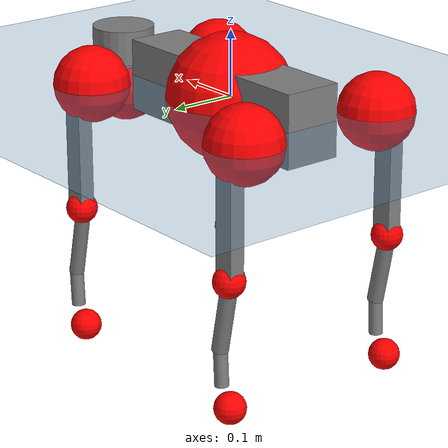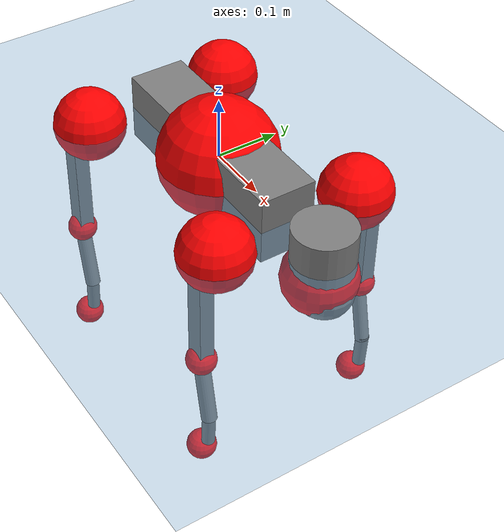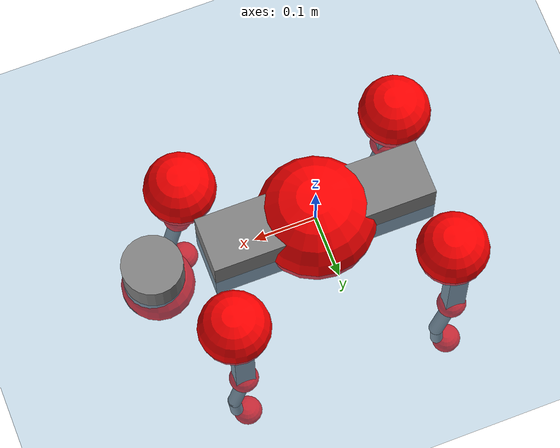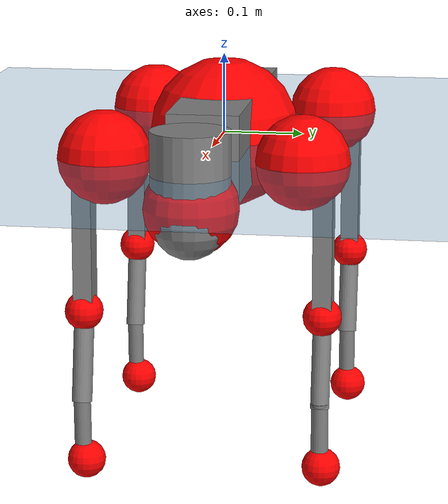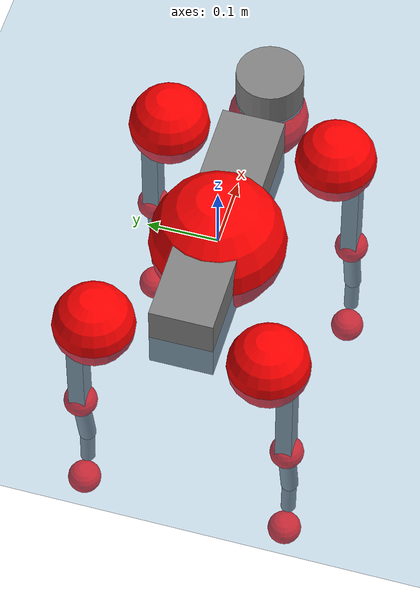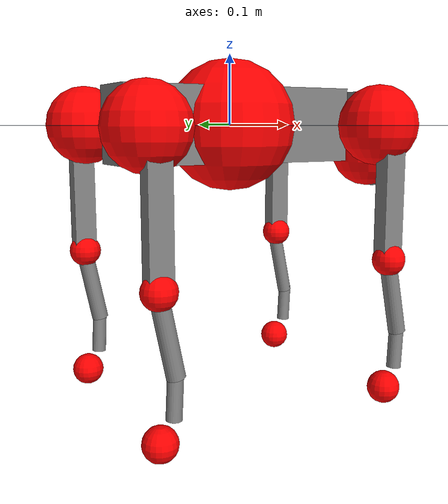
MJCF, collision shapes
<mujoco model="go2">
  <compiler angle="radian" assetdir="assets" balanceinertia="true" inertiafromgeom="false"/>

  <option timestep="0.005" density="1.2" viscosity="2e-05"/>

  <size nkey="1"/>

  <visual>
    <quality shadowsize="8192"/>
    <map shadowclip="0.5"/>
  </visual>

  <default>
    <default class="/">
      <geom contype="0" conaffinity="0" group="1" solref="-1000 -80"/>
      <site size="0.01 0.005 0.005" group="5"/>
      <general forcelimited="true" biastype="affine" gainprm="20" biasprm="0 -20 -0.5"/>
      <default class="go2">
        <joint armature="0.01" damping="0.01" frictionloss="0.2"/>
        <geom condim="1" margin="0.001"/>
        <default class="visual">
          <geom type="mesh" group="2"/>
        </default>
        <default class="collision">
          <geom group="3"/>
          <default class="foot">
            <geom size="0.022 0 0" condim="6" priority="1" friction="0.8 0.02 0.01" solimp="0.015 1 0.022"/>
          </default>
        </default>
        <default class="reward_collision_sphere">
          <geom group="5" rgba="1 0 0 1"/>
        </default>
      </default>
    </default>
  </default>

  <asset>
    <texture type="skybox" colorspace="auto" name="//unnamed_texture_0" builtin="gradient" rgb1="0.95 0.95 0.95" rgb2="0.95 0.95 0.95" width="100" height="600"/>
    <texture type="2d" colorspace="auto" name="texplane" builtin="checker" rgb1="0.345 0.575 0.748" rgb2="0.345 0.575 0.748" markrgb="1 1 1" width="512" height="512"/>
    <material name="MatPlane" class="/" texture="texplane" texuniform="true" texrepeat="2 2" specular="0.9"/>
    <material name="metal" class="/" rgba="0.9 0.95 0.95 1"/>
    <material name="black" class="/" rgba="0 0 0 1"/>
    <material name="white" class="/"/>
    <material name="gray" class="/" rgba="0.671705 0.692426 0.77427 1"/>
    <mesh name="base_0" class="/" file="base_0.obj"/>
    <mesh name="base_1" class="/" file="base_1.obj"/>
    <mesh name="base_2" class="/" file="base_2.obj"/>
    <mesh name="base_3" class="/" file="base_3.obj"/>
    <mesh name="base_4" class="/" file="base_4.obj"/>
    <mesh name="hip_0" class="/" file="hip_0.obj"/>
    <mesh name="hip_1" class="/" file="hip_1.obj"/>
    <mesh name="thigh_0" class="/" file="thigh_0.obj"/>
    <mesh name="thigh_1" class="/" file="thigh_1.obj"/>
    <mesh name="thigh_mirror_0" class="/" file="thigh_mirror_0.obj"/>
    <mesh name="thigh_mirror_1" class="/" file="thigh_mirror_1.obj"/>
    <mesh name="calf_0" class="/" file="calf_0.obj"/>
    <mesh name="calf_1" class="/" file="calf_1.obj"/>
    <mesh name="calf_mirror_0" class="/" file="calf_mirror_0.obj"/>
    <mesh name="calf_mirror_1" class="/" file="calf_mirror_1.obj"/>
    <mesh name="foot" class="/" file="foot.obj"/>
  </asset>

  <worldbody>
    <geom name="floor" class="/" size="100 100 0.125" type="plane" group="0" material="MatPlane"/>
    <light name="toplight_shadow" class="/" pos="0 0 5" dir="0.0990148 0.0990148 -0.990148" type="directional" ambient="0.04 0.04 0.04" diffuse="0.55 0.55 0.55" specular="0.12 0.12 0.12"/>
    <light name="toplight_fill" class="/" pos="0 0 5" dir="0.0990148 0.0990148 -0.990148" type="directional" castshadow="false" ambient="0.04 0.04 0.04" diffuse="0.3 0.3 0.3" specular="0.08 0.08 0.08"/>
    <body name="trunk" childclass="go2" pos="2.0586e-05 6.96082e-05 -0.000167122" quat="1 5.22098e-05 1.62891e-05 -0.000102908">
      <inertial pos="0.0196154 0.0016034 -0.00417055" quat="-0.000597632 0.713613 -0.00185343 0.700537" mass="5.99948" diaginertia="0.072433 0.115356 0.0146194"/>
      <joint name="//unnamed_joint_0" type="free" armature="0" damping="0" frictionloss="0"/>
      <geom name="//unnamed_geom_1" class="visual" material="black" mesh="base_0"/>
      <geom name="//unnamed_geom_2" class="visual" material="black" mesh="base_1"/>
      <geom name="//unnamed_geom_3" class="visual" material="black" mesh="base_2"/>
      <geom name="//unnamed_geom_4" class="visual" material="white" mesh="base_3"/>
      <geom name="//unnamed_geom_5" class="visual" material="gray" mesh="base_4"/>
      <geom name="trunk_1" class="collision" size="0.178682 0.0444093 0.0541461" type="box"/>
      <geom name="trunk_2" class="collision" size="0.0474966 0.0427469" pos="0.262207 0 0.00900088" type="cylinder"/>
      <geom name="trunk_3" class="collision" size="0.0446468" pos="0.269567 0 -0.0540053"/>
      <geom name="//unnamed_geom_9" class="reward_collision_sphere" size="0.0949932"/>
      <geom name="//unnamed_geom_10" class="reward_collision_sphere" size="0.0569959" pos="0.257607 0 -0.040504"/>
      <site name="imu" pos="-0.02814 0.00352052 0.0331581" size="0.00949932"/>
      <camera name="track" pos="0 -2.05937 0" quat="0.707107 0.707107 0 0" mode="trackcom"/>
      <camera name="ego_camera" pos="0.287047 0 0.040504" quat="-0.5 -0.5 0.5 0.5"/>
      <body name="FL_hip" pos="0.176785 0.0485932 0.000401932" quat="1 3.9283e-05 -0.000133634 4.36428e-05">
        <inertial pos="-0.00602579 0.00223083 0.00060216" quat="0.496664 0.497749 0.50701 0.49851" mass="0.589833" diaginertia="0.000587069 0.000702561 0.000283811"/>
        <joint name="FL_hip_joint" pos="0 0 0" axis="0.999993 0.00103762 0.00368326" stiffness="0.00157507" range="-1.02864 1.04739" armature="0.00929074" damping="0.00224336" frictionloss="0.180697"/>
        <geom name="//unnamed_geom_11" class="visual" material="metal" mesh="hip_0"/>
        <geom name="//unnamed_geom_12" class="visual" material="gray" mesh="hip_1"/>
        <geom name="//unnamed_geom_13" class="collision" size="0.0436969 0.0189986" pos="0 0.0823747 0" quat="0.707107 0.707107 0 0" type="cylinder"/>
        <geom name="//unnamed_geom_14" class="reward_collision_sphere" size="0.0569959" pos="0 0.0720779 0"/>
        <body name="FL_thigh" pos="-0.000774322 0.097642 0.00176816" quat="1 -4.6117e-05 7.07124e-05 0.000117664">
          <inertial pos="-0.00335025 -0.02295 -0.028567" quat="0.829647 0.0845602 -0.0198409 0.55149" mass="0.965405" diaginertia="0.00393681 0.0066967 0.000497115"/>
          <joint name="FL_thigh_joint" pos="0 0 0" axis="-0.000629405 1 0.000154446" stiffness="0.00697169" range="-1.56259 3.472" armature="0.00940994" damping="0.00338339" frictionloss="0.194847"/>
          <geom name="//unnamed_geom_15" class="visual" material="metal" mesh="thigh_0"/>
          <geom name="//unnamed_geom_16" class="visual" material="gray" mesh="thigh_1"/>
          <geom name="//unnamed_geom_17" class="collision" size="0.101168 0.0116367 0.0161488" pos="0 0 -0.0958593" quat="0.707107 0 0.707107 0" type="box"/>
          <body name="FL_calf" pos="-0.000371911 -0.000725611 -0.191107" quat="1 0.000699038 0.000507863 -1.64258e-05">
            <inertial pos="0.0054849 -0.000556367 -0.126822" quat="0.710781 0.00161341 -0.00468099 0.703396" mass="0.208375" diaginertia="0.000983819 0.00166576 3.13627e-05"/>
            <joint name="FL_calf_joint" pos="0 0 0" axis="0.00642867 0.999979 0.000481767" stiffness="0.00129663" range="-2.71334 -0.842349" armature="0.00988157" damping="0.00395618" frictionloss="0.188381"/>
            <geom name="//unnamed_geom_18" class="visual" material="gray" mesh="calf_0"/>
            <geom name="//unnamed_geom_19" class="visual" material="black" mesh="calf_1"/>
            <geom name="FL_calf0" class="collision" size="0.0113992 0.0569959" pos="0.00736019 0 -0.0540053" quat="0.994493 0 -0.104807 0" type="cylinder"/>
            <geom name="//unnamed_geom_21" class="collision" size="0.0104493 0.0308728" pos="0.0184005 0 -0.133213" quat="0.999688 0 0.0249974 0" type="cylinder"/>
            <geom name="//unnamed_geom_22" class="visual" pos="0 0 -0.191719" quat="1 0 0 0" material="black" mesh="foot"/>
            <geom name="FL_foot" class="foot" size="0.0182854" pos="-0.00184005 0 -0.191719"/>
            <geom name="//unnamed_geom_24" class="reward_collision_sphere" size="0.0237483"/>
            <geom name="//unnamed_geom_25" class="reward_collision_sphere" size="0.0237483" pos="-0.00184005 0 -0.191719"/>
            <site name="FL_foot" class="foot" pos="-0.00184005 0 -0.191719" size="0.00949932"/>
          </body>
        </body>
      </body>
      <body name="FR_hip" pos="0.177295 -0.0466359 7.61439e-06" quat="1 -0.000140692 0.000259965 -1.98169e-05">
        <inertial pos="-0.0046771 -0.00157075 -0.000438138" quat="0.49847 0.505069 0.499417 0.497006" mass="0.565346" diaginertia="0.000569938 0.000684976 0.000283634"/>
        <joint name="FR_hip_joint" pos="0 0 0" axis="0.999996 -0.000675353 -0.00277604" range="-1.03661 1.01573" armature="0.00962523" damping="0.0101861" frictionloss="0.192726"/>
        <geom name="//unnamed_geom_26" class="visual" pos="0 1.12899e-09 4.84247e-08" quat="4.63268e-05 1 0 0" material="metal" mesh="hip_0"/>
        <geom name="//unnamed_geom_27" class="visual" pos="0 1.83023e-09 -1.19773e-07" quat="4.63268e-05 1 0 0" material="gray" mesh="hip_1"/>
        <geom name="//unnamed_geom_28" class="collision" size="0.0436969 0.0189986" pos="0 -0.0823747 0" quat="0.707107 0.707107 0 0" type="cylinder"/>
        <geom name="//unnamed_geom_29" class="reward_collision_sphere" size="0.0569959" pos="0 -0.0720779 0"/>
        <body name="FR_thigh" pos="0.00247404 -0.0979125 0.000318043" quat="1 -0.000404385 -0.000264271 -0.000111986">
          <inertial pos="-0.00308011 0.0226241 -0.0294396" quat="0.551399 -0.0204469 0.0839909 0.829751" mass="1.02515" diaginertia="0.00394439 0.00702988 0.000533561"/>
          <joint name="FR_thigh_joint" pos="0 0 0" axis="-0.00858864 -0.999963 -0.00101199" range="-3.44722 1.53568" armature="0.00934347" damping="0.0049299" frictionloss="0.192359"/>
          <geom name="//unnamed_geom_30" class="visual" material="metal" mesh="thigh_mirror_0"/>
          <geom name="//unnamed_geom_31" class="visual" material="gray" mesh="thigh_mirror_1"/>
          <geom name="//unnamed_geom_32" class="collision" size="0.101168 0.0116367 0.0161488" pos="0 0 -0.0958593" quat="0.707107 0 0.707107 0" type="box"/>
          <body name="FR_calf" pos="0.00150039 -0.00110567 -0.192123" quat="1 -1.5679e-06 -1.19194e-06 -1.58946e-06">
            <inertial pos="0.00663619 0.000972089 -0.125609" quat="0.702437 -0.00715171 0.00304984 0.711703" mass="0.201582" diaginertia="0.000978402 0.00170495 3.16007e-05"/>
            <joint name="FR_calf_joint" pos="0 0 0" axis="-0.0101099 -0.999946 0.00250285" stiffness="0.00217714" range="0.824238 2.70196" armature="0.00947353" damping="0.0144301" frictionloss="0.169249"/>
            <geom name="//unnamed_geom_33" class="visual" material="gray" mesh="calf_mirror_0"/>
            <geom name="//unnamed_geom_34" class="visual" material="black" mesh="calf_mirror_1"/>
            <geom name="FR_calf0" class="collision" size="0.0123491 0.0569959" pos="0.00920024 0 -0.0540053" quat="0.995004 0 -0.0998334 0" type="cylinder"/>
            <geom name="//unnamed_geom_36" class="collision" size="0.0104493 0.0308728" pos="0.0184005 0 -0.133213" quat="0.999688 0 0.0249974 0" type="cylinder"/>
            <geom name="//unnamed_geom_37" class="visual" pos="0 0 -0.191719" quat="1 0 0 0" material="black" mesh="foot"/>
            <geom name="FR_foot" class="foot" size="0.0221199" pos="-0.00184005 0 -0.191719"/>
            <geom name="//unnamed_geom_39" class="reward_collision_sphere" size="0.0237483"/>
            <geom name="//unnamed_geom_40" class="reward_collision_sphere" size="0.0237483" pos="-0.00184005 0 -0.191719"/>
            <site name="FR_foot" class="foot" pos="-0.00184005 0 -0.191719" size="0.00949932"/>
          </body>
        </body>
      </body>
      <body name="RL_hip" pos="-0.177758 0.0490318 -0.000357092" quat="1 1.12863e-05 -9.25769e-06 1.39932e-05">
        <inertial pos="0.00578444 0.00135413 4.50426e-05" quat="0.513439 0.496243 0.498688 0.491358" mass="0.564803" diaginertia="0.000576109 0.000688253 0.000287056"/>
        <joint name="RL_hip_joint" pos="0 0 0" axis="-0.999875 0.0156814 0.00208159" range="-1.05159 1.06291" armature="0.00944292" damping="0.0123959" frictionloss="0.182123"/>
        <geom name="//unnamed_geom_41" class="visual" pos="-1.73674e-10 0 -3.4044e-08" quat="4.63268e-05 0 1 0" material="metal" mesh="hip_0"/>
        <geom name="//unnamed_geom_42" class="visual" pos="-2.81546e-10 0 -3.01922e-08" quat="4.63268e-05 0 1 0" material="gray" mesh="hip_1"/>
        <geom name="//unnamed_geom_43" class="collision" size="0.0436969 0.0189986" pos="0 0.0823747 0" quat="0.707107 0.707107 0 0" type="cylinder"/>
        <geom name="//unnamed_geom_44" class="reward_collision_sphere" size="0.0569959" pos="0 0.0720779 0"/>
        <body name="RL_thigh" pos="-8.14338e-05 0.0972779 -0.000684304" quat="1 -2.73664e-05 -0.000356934 -7.71277e-05">
          <inertial pos="-0.00247218 -0.0228127 -0.0295052" quat="0.828079 0.0808562 -0.0206422 0.554366" mass="0.997939" diaginertia="0.00399431 0.00696275 0.000524132"/>
          <joint name="RL_thigh_joint" pos="0 0 0" axis="-0.00707771 0.999973 -0.00180227" range="-0.521805 4.53887" armature="0.00948533" damping="0.00944115" frictionloss="0.188825"/>
          <geom name="//unnamed_geom_45" class="visual" material="metal" mesh="thigh_0"/>
          <geom name="//unnamed_geom_46" class="visual" material="gray" mesh="thigh_1"/>
          <geom name="//unnamed_geom_47" class="collision" size="0.101168 0.0116367 0.0161488" pos="0 0 -0.0958593" quat="0.707107 0 0.707107 0" type="box"/>
          <body name="RL_calf" pos="0.0011431 -9.06033e-05 -0.192039" quat="1 -0.000344246 0.00038227 0.00013787">
            <inertial pos="0.00635506 0.000266628 -0.127296" quat="0.710548 0.00180604 -0.00459906 0.703631" mass="0.209243" diaginertia="0.00102056 0.00177669 3.32239e-05"/>
            <joint name="RL_calf_joint" pos="0 0 0" axis="0.00705065 0.999913 -0.0111786" range="-2.71854 -0.883155" armature="0.00935584" damping="0" frictionloss="0.18154"/>
            <geom name="//unnamed_geom_48" class="visual" material="gray" mesh="calf_0"/>
            <geom name="//unnamed_geom_49" class="visual" material="black" mesh="calf_1"/>
            <geom name="RL_calf0" class="collision" size="0.0123491 0.0569959" pos="0.00920024 0 -0.0540053" quat="0.995004 0 -0.0998334 0" type="cylinder"/>
            <geom name="//unnamed_geom_51" class="collision" size="0.0104493 0.0308728" pos="0.0184005 0 -0.133213" quat="0.999688 0 0.0249974 0" type="cylinder"/>
            <geom name="//unnamed_geom_52" class="visual" pos="0 0 -0.191719" quat="1 0 0 0" material="black" mesh="foot"/>
            <geom name="RL_foot" class="foot" size="0.0167354" pos="-0.00184005 0 -0.191719"/>
            <geom name="//unnamed_geom_54" class="reward_collision_sphere" size="0.0237483"/>
            <geom name="//unnamed_geom_55" class="reward_collision_sphere" size="0.0237483" pos="-0.00184005 0 -0.191719"/>
            <site name="RL_foot" class="foot" pos="-0.00184005 0 -0.191719" size="0.00949932"/>
          </body>
        </body>
      </body>
      <body name="RR_hip" pos="-0.177775 -0.0488963 -0.00226221" quat="1 -0.000194089 0.000169388 -0.000665166">
        <inertial pos="0.00479209 -0.002885 0.000930786" quat="0.501102 0.490008 0.495506 0.513091" mass="0.586503" diaginertia="0.000581404 0.000699122 0.000284678"/>
        <joint name="RR_hip_joint" pos="0 0 0" axis="-0.999976 -0.00622427 -0.00290503" stiffness="0.00235915" range="-1.06887 1.04452" armature="0.00883498" damping="0.0126876" frictionloss="0.186536"/>
        <geom name="//unnamed_geom_56" class="visual" pos="1.7747e-10 1.12899e-09 -8.24688e-08" quat="2.14617e-09 4.63268e-05 4.63268e-05 -1" material="metal" mesh="hip_0"/>
        <geom name="//unnamed_geom_57" class="visual" pos="2.72155e-10 1.83023e-09 8.95806e-08" quat="2.14617e-09 4.63268e-05 4.63268e-05 -1" material="gray" mesh="hip_1"/>
        <geom name="//unnamed_geom_58" class="collision" size="0.0436969 0.0189986" pos="0 -0.0823747 0" quat="0.707107 0.707107 0 0" type="cylinder"/>
        <geom name="//unnamed_geom_59" class="reward_collision_sphere" size="0.0569959" pos="0 -0.0720779 0"/>
        <body name="RR_thigh" pos="-0.000161679 -0.0986088 -0.00316506" quat="1 -0.000259246 -0.000101689 8.9631e-05">
          <inertial pos="-0.00328713 0.0252879 -0.0301499" quat="0.549957 -0.0175438 0.0840355 0.830769" mass="0.95827" diaginertia="0.00380477 0.00660024 0.000501519"/>
          <joint name="RR_thigh_joint" pos="0 0 0" axis="0.00204538 -0.999973 -0.00704304" range="-4.55893 0.490805" armature="0.0106397" damping="0.0159361" frictionloss="0.182496"/>
          <geom name="//unnamed_geom_60" class="visual" material="metal" mesh="thigh_mirror_0"/>
          <geom name="//unnamed_geom_61" class="visual" material="gray" mesh="thigh_mirror_1"/>
          <geom name="//unnamed_geom_62" class="collision" size="0.101168 0.0116367 0.0161488" pos="0 0 -0.0958593" quat="0.707107 0 0.707107 0" type="box"/>
          <body name="RR_calf" pos="-0.000143043 -0.00144698 -0.191863" quat="1 0.000241308 0.000164687 -6.26575e-05">
            <inertial pos="0.00466206 0.00103456 -0.127273" quat="0.701664 -0.00255402 0.0106092 0.712424" mass="0.205149" diaginertia="0.000994272 0.00172862 3.26224e-05"/>
            <joint name="RR_calf_joint" pos="0 0 0" axis="0.00171003 -0.999997 -0.00167992" stiffness="0.00567267" range="0.854107 2.75369" armature="0.00948976" damping="0.0114822" frictionloss="0.194107"/>
            <geom name="//unnamed_geom_63" class="visual" material="gray" mesh="calf_mirror_0"/>
            <geom name="//unnamed_geom_64" class="visual" material="black" mesh="calf_mirror_1"/>
            <geom name="RR_calf0" class="collision" size="0.0123491 0.0569959" pos="0.00920024 0 -0.0540053" quat="0.995004 0 -0.0998334 0" type="cylinder"/>
            <geom name="//unnamed_geom_66" class="collision" size="0.0104493 0.0308728" pos="0.0184005 0 -0.133213" quat="0.999688 0 0.0249974 0" type="cylinder"/>
            <geom name="//unnamed_geom_67" class="visual" pos="0 0 -0.191719" quat="1 0 0 0" material="black" mesh="foot"/>
            <geom name="RR_foot" class="foot" size="0.0209184" pos="-0.00184005 0 -0.191719"/>
            <geom name="//unnamed_geom_69" class="reward_collision_sphere" size="0.0237483"/>
            <geom name="//unnamed_geom_70" class="reward_collision_sphere" size="0.0237483" pos="-0.00184005 0 -0.191719"/>
            <site name="RR_foot" class="foot" pos="-0.00184005 0 -0.191719" size="0.00949932"/>
          </body>
        </body>
      </body>
    </body>
  </worldbody>

  <contact>
    <pair class="/" geom1="floor" geom2="FL_foot" name="//unnamed_contact_0"/>
    <pair class="/" geom1="floor" geom2="FR_foot" name="//unnamed_contact_1"/>
    <pair class="/" geom1="floor" geom2="RL_foot" name="//unnamed_contact_2"/>
    <pair class="/" geom1="floor" geom2="RR_foot" name="//unnamed_contact_3"/>
  </contact>

  <actuator>
    <general name="FL_hip" class="/" joint="FL_hip_joint" forcerange="-22.9923 22.9923" gainprm="19.9476" biasprm="0 -19.9476 -0.46329"/>
    <general name="FL_thigh" class="/" joint="FL_thigh_joint" forcerange="-20.7342 20.7342" gainprm="19.9476" biasprm="0 -19.9476 -0.46329"/>
    <general name="FL_calf" class="/" joint="FL_calf_joint" forcerange="-42.0761 42.0761" gainprm="19.9476" biasprm="0 -19.9476 -0.46329"/>
    <general name="FR_hip" class="/" joint="FR_hip_joint" forcerange="-23.0103 23.0103" gainprm="19.9476" biasprm="0 -19.9476 -0.46329"/>
    <general name="FR_thigh" class="/" joint="FR_thigh_joint" forcerange="-21.611 21.611" gainprm="19.9476" biasprm="0 -19.9476 -0.46329"/>
    <general name="FR_calf" class="/" joint="FR_calf_joint" forcerange="-44.4899 44.4899" gainprm="19.9476" biasprm="0 -19.9476 -0.46329"/>
    <general name="RL_hip" class="/" joint="RL_hip_joint" forcerange="-22.4313 22.4313" gainprm="19.9476" biasprm="0 -19.9476 -0.46329"/>
    <general name="RL_thigh" class="/" joint="RL_thigh_joint" forcerange="-22.5772 22.5772" gainprm="19.9476" biasprm="0 -19.9476 -0.46329"/>
    <general name="RL_calf" class="/" joint="RL_calf_joint" forcerange="-44.4538 44.4538" gainprm="19.9476" biasprm="0 -19.9476 -0.46329"/>
    <general name="RR_hip" class="/" joint="RR_hip_joint" forcerange="-20.7403 20.7403" gainprm="19.9476" biasprm="0 -19.9476 -0.46329"/>
    <general name="RR_thigh" class="/" joint="RR_thigh_joint" forcerange="-22.3228 22.3228" gainprm="19.9476" biasprm="0 -19.9476 -0.46329"/>
    <general name="RR_calf" class="/" joint="RR_calf_joint" forcerange="-42.8542 42.8542" gainprm="19.9476" biasprm="0 -19.9476 -0.46329"/>
  </actuator>

  <sensor>
    <gyro site="imu" name="imu_angular_velocity"/>
    <velocimeter site="imu" name="imu_linear_velocity"/>
    <framelinvel objtype="site" objname="FL_foot" name="FL_foot_global_linear_velocity"/>
    <framelinvel objtype="site" objname="FR_foot" name="FR_foot_global_linear_velocity"/>
    <framelinvel objtype="site" objname="RL_foot" name="RL_foot_global_linear_velocity"/>
    <framelinvel objtype="site" objname="RR_foot" name="RR_foot_global_linear_velocity"/>
  </sensor>

  <keyframe>
    <key name="home" qpos="0 0 0.325 1 0 0 0 0.1 0.8 -1.5 -0.1 -0.8 1.5 -0.1 0.8 -1.5 0.1 -0.8 1.5"/>
  </keyframe>
</mujoco>
